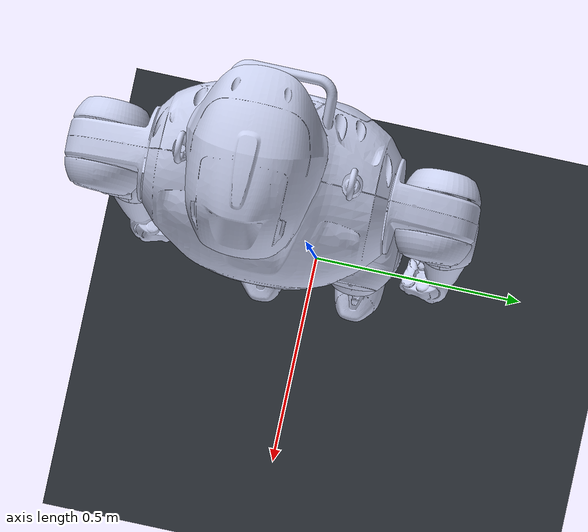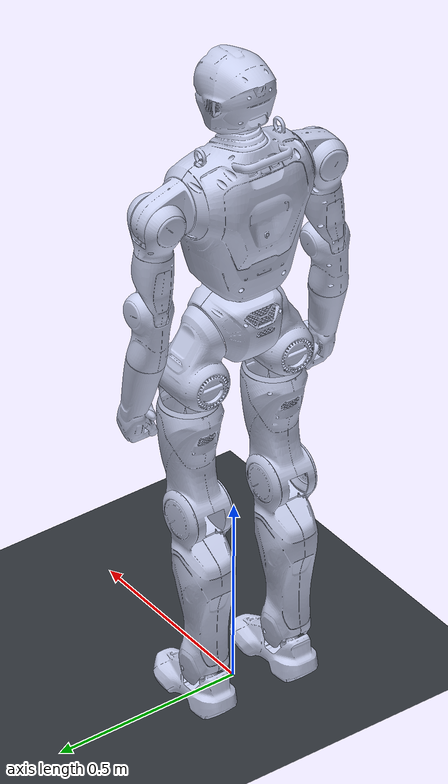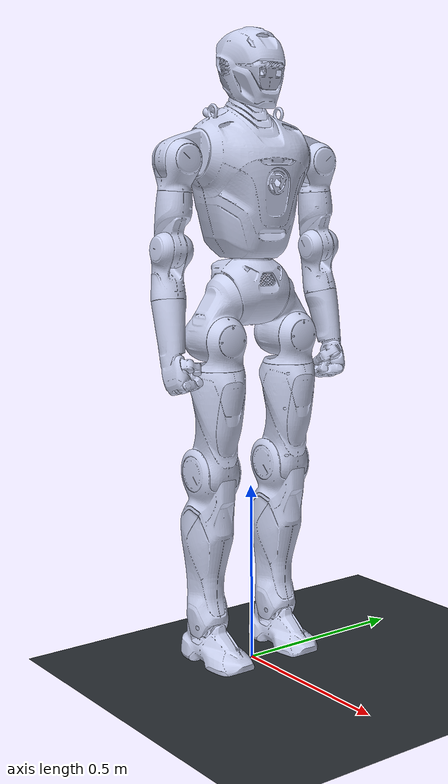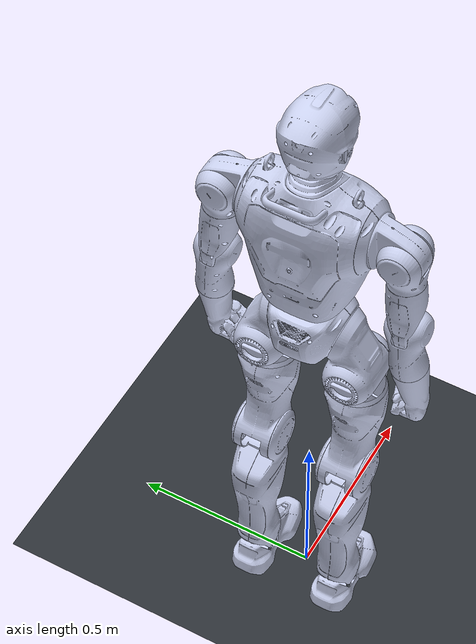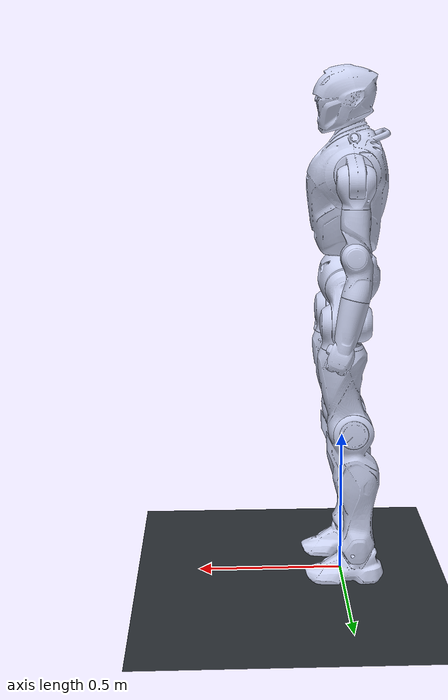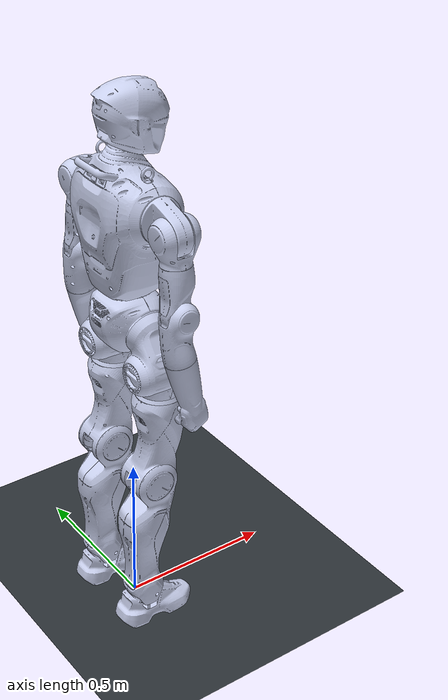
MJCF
<mujoco model="engineai_robotics">
  <compiler angle="radian" />
  <option tolerance="1e-10" />
  <default>
    <default class="biped">
      <default class="collision">
        <geom group="3" rgba="0.804 0.361 0.031 0.5" />
        <default class="collision_head">
          <geom size="0.09 0 0" />
          </default>
        <default class="collision_torso_upper_box">
          <geom size="0.11 0.14 0.095" type="box" />
          </default>
        <default class="collision_torso_lower_box">
          <geom size="0.09 0.1 0.07" type="box" />
          </default>
        <default class="collision_base">
          <geom size="0.09 0 0" />
          </default>
        <default class="collision_left_fore_foot">
          <geom size="0.057 0.055 0.01" type="box" />
          </default>
        <default class="collision_left_hind_foot">
          <geom size="0.03 0.05 0.01" type="box" />
          </default>
        <default class="collision_left_foot_toe">
          <geom size="0.013 0.06 0.01" type="box" />
          </default>
        <default class="collision_left_foot_heel">
          <geom size="0.018 0.05 0.01" type="box" />
          </default>
        <default class="collision_right_fore_foot">
          <geom size="0.057 0.055 0.01" type="box" />
          </default>
        <default class="collision_right_hind_foot">
          <geom size="0.03 0.05 0.01" type="box" />
          </default>
        <default class="collision_right_foot_toe">
          <geom size="0.013 0.06 0.01" type="box" />
          </default>
        <default class="collision_right_foot_heel">
          <geom size="0.018 0.05 0.01" type="box" />
          </default>
        <default class="collision_left_wrist_end">
          <geom size="0.05 0 0" />
          </default>
        <default class="collision_shoulder_yaw_left">
          <geom size="0.042 0.06 0" type="cylinder" />
          </default>
        <default class="collision_elbow_pitch_left">
          <geom size="0.05 0 0" />
          </default>
        <default class="collision_elbow_yaw_left">
          <geom size="0.035 0.035 0.08" type="box" />
          </default>
        <default class="collision_shoulder_yaw_right">
          <geom size="0.042 0.06 0" type="cylinder" />
          </default>
        <default class="collision_elbow_pitch_right">
          <geom size="0.05 0 0" />
          </default>
        <default class="collision_elbow_yaw_right">
          <geom size="0.035 0.035 0.08" type="box" />
          </default>
        <default class="collision_right_wrist_end">
          <geom size="0.05 0 0" />
          </default>
        <default class="collision_hip_left">
          <geom size="0.062 0.08 0" type="cylinder" />
          </default>
        <default class="collision_hip_yaw_left">
          <geom size="0.06 0.06 0.11" type="box" />
          </default>
        <default class="collision_hip_right">
          <geom size="0.062 0.08 0" type="cylinder" />
          </default>
        <default class="collision_hip_yaw_right">
          <geom size="0.06 0.06 0.11" type="box" />
          </default>
        <default class="collision_knee_left_1">
          <geom size="0.08 0 0" />
          </default>
        <default class="collision_knee_left_2">
          <geom size="0.05 0.05 0.14" type="box" />
          </default>
        <default class="collision_knee_right_1">
          <geom size="0.08 0 0" />
          </default>
        <default class="collision_knee_right_2">
          <geom size="0.05 0.05 0.14" type="box" />
          </default>
        <default class="collision_shoulder_roll_left">
          <geom size="0.042 0.06 0" type="cylinder" />
          </default>
        <default class="collision_shoulder_roll_right">
          <geom size="0.042 0.06 0" type="cylinder" />
          </default>
        </default>
      <default class="visual">
        <geom contype="0" conaffinity="0" group="2" />
        </default>
      <default class="joint">
        <joint damping="0.6" frictionloss="0.8" />
        </default>
      </default>
    </default>
  <asset>
    <texture name="t800_skybox" type="skybox" builtin="gradient" rgb1="0.35 0.45 0.60" rgb2="0.02 0.03 0.05" width="512" height="512" />
    <texture name="t800_groundplane" type="2d" builtin="checker" rgb1="0.22 0.24 0.26" rgb2="0.12 0.14 0.16" mark="edge" markrgb="0.8 0.8 0.8" width="512" height="512" />
    <material name="t800_groundplane" texture="t800_groundplane" texuniform="true" texrepeat="6 6" reflectance="0.18" />
    <texture type="2d" name="LINK_BASE" file="../texture/LINK_BASE.png" />
    <texture type="2d" name="LINK_HIP_PITCH" file="../texture/LINK_HIP_PITCH_L.png" />
    <texture type="2d" name="LINK_HIP_ROLL" file="../texture/LINK_HIP_ROLL_L.png" />
    <texture type="2d" name="LINK_HIP_YAW" file="../texture/LINK_HIP_YAW_L.png" />
    <texture type="2d" name="LINK_KNEE_PITCH" file="../texture/LINK_KNEE_PITCH_L.png" />
    <texture type="2d" name="LINK_ANKLE_ROLL" file="../texture/LINK_ANKLE_ROLL_L.png" />
    <texture type="2d" name="LINK_TORSO_YAW" file="../texture/LINK_TORSO_YAW.png" />
    <texture type="2d" name="LINK_SHOULDER_PITCH" file="../texture/LINK_SHOULDER_PITCH_L.png" />
    <texture type="2d" name="LINK_SHOULDER_ROLL" file="../texture/LINK_SHOULDER_ROLL_L.png" />
    <texture type="2d" name="LINK_SHOULDER_YAW" file="../texture/LINK_SHOULDER_YAW_L.png" />
    <texture type="2d" name="LINK_ELBOW_PITCH_L" file="../texture/LINK_ELBOW_PITCH_L.png" />
    <texture type="2d" name="LINK_ELBOW_PITCH_R" file="../texture/LINK_ELBOW_PITCH_R.png" />
    <texture type="2d" name="LINK_ELBOW_YAW_L" file="../texture/LINK_ELBOW_YAW_L.png" />
    <texture type="2d" name="LINK_ELBOW_YAW_R" file="../texture/LINK_ELBOW_YAW_R.png" />
    <texture type="2d" name="LINK_HEAD_YAW" file="../texture/LINK_HEAD_YAW.png" />
    <material name="LINK_BASE" texture="LINK_BASE" />
    <material name="LINK_HIP_PITCH" texture="LINK_HIP_PITCH" />
    <material name="LINK_HIP_ROLL" texture="LINK_HIP_ROLL" />
    <material name="LINK_HIP_YAW" texture="LINK_HIP_YAW" />
    <material name="LINK_KNEE_PITCH" texture="LINK_KNEE_PITCH" />
    <material name="LINK_ANKLE_ROLL" texture="LINK_ANKLE_ROLL" />
    <material name="LINK_TORSO_YAW" texture="LINK_TORSO_YAW" />
    <material name="LINK_SHOULDER_PITCH" texture="LINK_SHOULDER_PITCH" />
    <material name="LINK_SHOULDER_ROLL" texture="LINK_SHOULDER_ROLL" />
    <material name="LINK_SHOULDER_YAW" texture="LINK_SHOULDER_YAW" />
    <material name="LINK_ELBOW_PITCH_L" texture="LINK_ELBOW_PITCH_L" />
    <material name="LINK_ELBOW_PITCH_R" texture="LINK_ELBOW_PITCH_R" />
    <material name="LINK_ELBOW_YAW_L" texture="LINK_ELBOW_YAW_L" />
    <material name="LINK_ELBOW_YAW_R" texture="LINK_ELBOW_YAW_R" />
    <material name="LINK_HEAD_YAW" texture="LINK_HEAD_YAW" />
    <mesh name="LINK_BASE" file="../meshes/LINK_BASE.obj" />
    <mesh name="LINK_HIP_PITCH_L" file="../meshes/LINK_HIP_PITCH_L.obj" />
    <mesh name="LINK_HIP_ROLL_L" file="../meshes/LINK_HIP_ROLL_L.obj" />
    <mesh name="LINK_HIP_YAW_L" file="../meshes/LINK_HIP_YAW_L.obj" />
    <mesh name="LINK_KNEE_PITCH_L" file="../meshes/LINK_KNEE_PITCH_L.obj" />
    <mesh name="LINK_ANKLE_PITCH_L" file="../meshes/LINK_ANKLE_PITCH_L.obj" />
    <mesh name="LINK_ANKLE_ROLL_L" file="../meshes/LINK_ANKLE_ROLL_L.obj" />
    <mesh name="LINK_HIP_PITCH_R" file="../meshes/LINK_HIP_PITCH_R.obj" />
    <mesh name="LINK_HIP_ROLL_R" file="../meshes/LINK_HIP_ROLL_R.obj" />
    <mesh name="LINK_HIP_YAW_R" file="../meshes/LINK_HIP_YAW_R.obj" />
    <mesh name="LINK_KNEE_PITCH_R" file="../meshes/LINK_KNEE_PITCH_R.obj" />
    <mesh name="LINK_ANKLE_PITCH_R" file="../meshes/LINK_ANKLE_PITCH_R.obj" />
    <mesh name="LINK_ANKLE_ROLL_R" file="../meshes/LINK_ANKLE_ROLL_R.obj" />
    <mesh name="LINK_WAIST_YAW" file="../meshes/LINK_TORSO_YAW.obj" />
    <mesh name="LINK_SHOULDER_PITCH_L" file="../meshes/LINK_SHOULDER_PITCH_L.obj" />
    <mesh name="LINK_SHOULDER_ROLL_L" file="../meshes/LINK_SHOULDER_ROLL_L.obj" />
    <mesh name="LINK_SHOULDER_YAW_L" file="../meshes/LINK_SHOULDER_YAW_L.obj" />
    <mesh name="LINK_ELBOW_PITCH_L" file="../meshes/LINK_ELBOW_PITCH_L.obj" />
    <mesh name="LINK_ELBOW_YAW_L" file="../meshes/LINK_ELBOW_YAW_L.obj" />
    <mesh name="LINK_SHOULDER_PITCH_R" file="../meshes/LINK_SHOULDER_PITCH_R.obj" />
    <mesh name="LINK_SHOULDER_ROLL_R" file="../meshes/LINK_SHOULDER_ROLL_R.obj" />
    <mesh name="LINK_SHOULDER_YAW_R" file="../meshes/LINK_SHOULDER_YAW_R.obj" />
    <mesh name="LINK_ELBOW_PITCH_R" file="../meshes/LINK_ELBOW_PITCH_R.obj" />
    <mesh name="LINK_ELBOW_YAW_R" file="../meshes/LINK_ELBOW_YAW_R.obj" />
    <mesh name="LINK_HEAD_PITCH" file="../meshes/LINK_HEAD_PITCH.obj" />
    <mesh name="LINK_HEAD_YAW" file="../meshes/LINK_HEAD_YAW.obj" />
    </asset>
  <worldbody>
    <geom name="t800_floor" type="plane" pos="0 0 0.010924" size="0 0 0.01" material="t800_groundplane" contype="1" conaffinity="0" condim="3" friction="1 0.005 0.0001" />
    <light name="t800_key_light" pos="0 -2 3" dir="0 1 -1.5" diffuse="0.8 0.8 0.8" specular="0.25 0.25 0.25" />
    <light name="t800_fill_light" pos="1.5 1.5 2" dir="-1 -1 -1" diffuse="0.35 0.35 0.35" specular="0.05 0.05 0.05" />
    <light name="spotlight" target="LINK_BASE" pos="0 -1 2" dir="0 0 -1" mode="targetbodycom" />
    <body name="LINK_BASE" pos="0 0 1.03">
      <inertial pos="0.0148721 -0.00011942 0.167324" quat="0.999625 -0.0228524 0.0149724 -0.00187301" mass="10.0831" diaginertia="0.0506204 0.0339056 0.0328288" />
      <joint type="free" limited="false" actuatorfrclimited="false" />
      <geom class="visual" type="mesh" material="LINK_BASE" rgba="0.79216 0.81961 0.93333 1" mesh="LINK_BASE" />
      <geom class="collision_base" pos="-0.01 0 0.01" />
      <site name="base" pos="0.017949 -6.844e-05 0.21642" />
      <site name="imu" pos="0.0219 0 0.1252" />
      <body name="LINK_HIP_PITCH_L" pos="0 0.079178 0">
        <inertial pos="0.0061914 0.039194 -0.0989976" quat="0.703048 -0.000940502 -0.0835001 0.706222" mass="3.53619" diaginertia="0.00795732 0.00716152 0.00476425" />
        <joint name="J00_HIP_PITCH_L" pos="0 0 0" axis="0 0.965926 -0.258819" range="-3.316 2.269" actuatorfrcrange="-415 415" armature="0.242726" />
        <geom class="visual" type="mesh" material="LINK_HIP_PITCH" rgba="0.792157 0.819608 0.933333 1" mesh="LINK_HIP_PITCH_L" />
        <geom class="collision_hip_left" pos="0 0.04 -0.1" quat="0.707107 0 0.707107 0" />
        <body name="LINK_HIP_ROLL_L" pos="0.004662 0.040322 -0.10752">
          <inertial pos="0.0375309 4.95e-06 -0.0348455" quat="0.954117 -3.76557e-05 0.299433 -0.000109257" mass="0.851442" diaginertia="0.00291994 0.00257237 0.0014565" />
          <joint name="J01_HIP_ROLL_L" pos="0 0 0" axis="1 0 0" range="-1.082 2.059" actuatorfrcrange="-370 370" armature="0.141108" />
          <geom class="visual" type="mesh" material="LINK_HIP_ROLL" rgba="0.792157 0.819608 0.933333 1" mesh="LINK_HIP_ROLL_L" />
          <body name="LINK_HIP_YAW_L" pos="0.0094616 0 -0.080512">
            <inertial pos="-0.0182984 0.00236123 -0.176347" quat="0.709176 0.0588188 0.0462079 0.701053" mass="7.19482" diaginertia="0.115656 0.11402 0.0107766" />
            <joint name="J02_HIP_YAW_L" pos="0 0 0" axis="0 0 1" range="-1.42245 3.60228" actuatorfrcrange="-222 222" armature="0.0448737" />
            <geom class="visual" type="mesh" material="LINK_HIP_YAW" rgba="0.792157 0.819608 0.933333 1" mesh="LINK_HIP_YAW_L" />
            <geom class="collision_hip_yaw_left" pos="0 0.002 -0.1" />
            <body name="LINK_KNEE_PITCH_L" pos="-0.037707 0 -0.28792">
              <inertial pos="-0.0197449 0.00139162 -0.211907" quat="0.475454 0.0210361 0.0168989 0.879327" mass="5.99503" diaginertia="0.0858454 0.0856511 0.0115715" />
              <joint name="J03_KNEE_PITCH_L" pos="0 0 0" axis="0 1 0" range="-0.261667 2.355" actuatorfrcrange="-415 415" armature="0.242726" />
              <geom class="visual" type="mesh" material="LINK_KNEE_PITCH" rgba="0.792157 0.819608 0.933333 1" mesh="LINK_KNEE_PITCH_L" />
              <geom class="collision_knee_left_1" />
              <geom class="collision_knee_left_2" pos="-0.02 0 -0.25" />
              <body name="LINK_ANKLE_PITCH_L" pos="-0.0027168 0 -0.43867">
                <inertial pos="-3.678e-05 0 -0.00887033" quat="0.707027 -0.0106245 -0.0106245 0.707027" mass="0.144221" diaginertia="8.493e-05 6.78768e-05 3.82432e-05" />
                <joint name="J04_ANKLE_PITCH_L" pos="0 0 0" axis="0 1 0" range="-0.68068 0.68068" actuatorfrcrange="-160 160" armature="0.0354625" />
                <geom class="visual" type="mesh" rgba="0.796078 0.823529 0.937255 1" mesh="LINK_ANKLE_PITCH_L" />
                <body name="LINK_ANKLE_ROLL_L" pos="0.0011073 0 -0.037928">
                  <inertial pos="-0.00128738 -0.00120638 -0.0229558" quat="0.462135 0.542362 0.559636 0.423182" mass="1.49439" diaginertia="0.00707073 0.0069149 0.00202774" />
                  <joint name="J05_ANKLE_ROLL_L" pos="0 0 0" axis="1 0 0" range="-0.3491 0.1745" actuatorfrcrange="-160 160" armature="0.0354625" />
                  <geom class="visual" type="mesh" material="LINK_ANKLE_ROLL" rgba="0.792157 0.819608 0.933333 1" mesh="LINK_ANKLE_ROLL_L" />
                  <body name="LINK_FOOT_L">
                    <inertial pos="0 0 0" mass="0.001" diaginertia="1e-12 1e-12 1e-12" />
                    <geom class="collision_left_fore_foot" pos="0.1 0.00166 -0.054" />
                    <geom class="collision_left_hind_foot" pos="-0.053 0.00166 -0.054" />
                    <geom class="collision_left_foot_heel" pos="-0.092 0.00166 -0.045" quat="0.956383 0 0.292117 0" />
                    <site name="force_sensor_left_foot" pos="0 0 0" />
                    <site name="torque_sensor_left_foot" pos="0 0 0" />
                    </body>
                  </body>
                </body>
              </body>
            </body>
          </body>
        </body>
      <body name="LINK_HIP_PITCH_R" pos="0 -0.079178 0">
        <inertial pos="0.0061914 -0.039194 -0.0989976" quat="0.706222 -0.0835001 -0.000940502 0.703048" mass="3.53619" diaginertia="0.00795732 0.00716152 0.00476425" />
        <joint name="J06_HIP_PITCH_R" pos="0 0 0" axis="0 0.965926 0.258819" range="-3.316 2.269" actuatorfrcrange="-415 415" armature="0.242726" />
        <geom class="visual" type="mesh" material="LINK_HIP_PITCH" rgba="0.792157 0.819608 0.933333 1" mesh="LINK_HIP_PITCH_R" />
        <geom class="collision_hip_right" pos="0 -0.04 -0.1" quat="0.707107 0 0.707107 0" />
        <body name="LINK_HIP_ROLL_R" pos="0.004662 -0.040322 -0.10752">
          <inertial pos="0.0375309 -4.95e-06 -0.0348455" quat="0.954117 3.76557e-05 0.299433 0.000109257" mass="0.851442" diaginertia="0.00291994 0.00257237 0.0014565" />
          <joint name="J07_HIP_ROLL_R" pos="0 0 0" axis="1 0 0" range="-2.059 1.082" actuatorfrcrange="-370 370" armature="0.141108" />
          <geom class="visual" type="mesh" material="LINK_HIP_ROLL" rgba="0.792157 0.819608 0.933333 1" mesh="LINK_HIP_ROLL_R" />
          <body name="LINK_HIP_YAW_R" pos="0.0094616 0 -0.080512">
            <inertial pos="-0.0182984 -0.00236123 -0.176347" quat="0.701053 0.0462079 0.0588188 0.709176" mass="7.19482" diaginertia="0.115656 0.11402 0.0107766" />
            <joint name="J08_HIP_YAW_R" pos="0 0 0" axis="0 0 1" range="-3.60228 1.42245" actuatorfrcrange="-222 222" armature="0.0448737" />
            <geom class="visual" type="mesh" material="LINK_HIP_YAW" rgba="0.792157 0.819608 0.933333 1" mesh="LINK_HIP_YAW_R" />
            <geom class="collision_hip_yaw_right" pos="0 -0.002 -0.1" />
            <body name="LINK_KNEE_PITCH_R" pos="-0.037707 0 -0.28792">
              <inertial pos="-0.0197449 -0.00139162 -0.211907" quat="0.879327 0.0168989 0.0210361 0.475454" mass="5.99503" diaginertia="0.0858454 0.0856511 0.0115715" />
              <joint name="J09_KNEE_PITCH_R" pos="0 0 0" axis="0 1 0" range="-0.261667 2.355" actuatorfrcrange="-415 415" armature="0.242726" />
              <geom class="visual" type="mesh" material="LINK_KNEE_PITCH" rgba="0.792157 0.819608 0.933333 1" mesh="LINK_KNEE_PITCH_R" />
              <geom class="collision_knee_right_1" />
              <geom class="collision_knee_right_2" pos="-0.02 0 -0.25" />
              <body name="LINK_ANKLE_PITCH_R" pos="-0.0027168 0 -0.43867">
                <inertial pos="-3.678e-05 0 -0.00887033" quat="0.707027 -0.0106245 -0.0106245 0.707027" mass="0.144221" diaginertia="8.493e-05 6.78768e-05 3.82432e-05" />
                <joint name="J10_ANKLE_PITCH_R" pos="0 0 0" axis="0 1 0" range="-0.68068 0.68068" actuatorfrcrange="-160 160" armature="0.0354625" />
                <geom class="visual" type="mesh" rgba="0.792157 0.819608 0.933333 1" mesh="LINK_ANKLE_PITCH_R" />
                <body name="LINK_ANKLE_ROLL_R" pos="0.0011073 0 -0.037928">
                  <inertial pos="-0.00128738 0.00120638 -0.0229558" quat="0.423182 0.559636 0.542362 0.462135" mass="1.49439" diaginertia="0.00707073 0.0069149 0.00202774" />
                  <joint name="J11_ANKLE_ROLL_R" pos="0 0 0" axis="1 0 0" range="-0.1745 0.3491" actuatorfrcrange="-160 160" armature="0.0354625" />
                  <geom class="visual" type="mesh" material="LINK_ANKLE_ROLL" rgba="0.792157 0.819608 0.933333 1" mesh="LINK_ANKLE_ROLL_R" />
                  <body name="LINK_FOOT_R">
                    <inertial pos="0 0 0" mass="0.001" diaginertia="1e-12 1e-12 1e-12" />
                    <geom class="collision_right_fore_foot" pos="0.1 -0.00166 -0.054" />
                    <geom class="collision_right_hind_foot" pos="-0.053 0.00166 -0.054" />
                    <geom class="collision_right_foot_heel" pos="-0.092 0.00166 -0.045" quat="0.956383 0 0.292117 0" />
                    <site name="force_sensor_right_foot" pos="0 0 0" />
                    <site name="torque_sensor_right_foot" pos="0 0 0" />
                    </body>
                  </body>
                </body>
              </body>
            </body>
          </body>
        </body>
      <body name="LINK_WAIST_YAW" pos="0 0 0.10384">
        <inertial pos="-0.00880845 -0.0006861 0.222762" quat="0.998368 -0.00027422 -0.0570422 -0.0028246" mass="19.4108" diaginertia="0.256742 0.207512 0.15304" />
        <joint name="J12_TORSO_YAW" pos="0 0 0" axis="0 0 1" range="-4.381 1.2392" actuatorfrcrange="-222 222" armature="0.0448737" />
        <geom class="visual" type="mesh" material="LINK_TORSO_YAW" rgba="0.792157 0.819608 0.933333 1" mesh="LINK_WAIST_YAW" />
        <geom class="collision_torso_lower_box" pos="-0.007 -0.001 0.075" />
        <geom class="collision_torso_upper_box" pos="-0.007 -0.001 0.25" />
        <body name="LINK_SHOULDER_PITCH_L" pos="-0.011 0.16303 0.27889">
          <inertial pos="-0.00615457 0.0528418 -0.0124871" quat="0.835175 0.547699 0.0286813 0.0410699" mass="1.76883" diaginertia="0.00240978 0.00213951 0.00130718" />
          <joint name="J13_SHOULDER_PITCH_L" pos="0 0 0" axis="0 0.996779 0.0801989" range="-2.967 2.793" actuatorfrcrange="-160 160" armature="0.0354625" />
          <geom class="visual" type="mesh" material="LINK_SHOULDER_PITCH" rgba="0.792157 0.819608 0.933333 1" mesh="LINK_SHOULDER_PITCH_L" />
          <body name="LINK_SHOULDER_ROLL_L" pos="0 0.062533 -0.015455">
            <inertial pos="-0.00557192 0.00446659 -0.0271293" quat="0.699304 -0.0958375 -0.196856 0.680468" mass="0.682893" diaginertia="0.00216819 0.00159945 0.0014132" />
            <joint name="J14_SHOULDER_ROLL_L" pos="0 0 0" axis="1 0 0" range="-0.384 2.443" actuatorfrcrange="-160 160" armature="0.0354625" />
            <geom class="visual" type="mesh" material="LINK_SHOULDER_ROLL" rgba="0.792157 0.819608 0.933333 1" mesh="LINK_SHOULDER_ROLL_L" />
            <geom class="collision_shoulder_roll_left" quat="0.707107 0 0.707107 0" />
            <body name="LINK_SHOULDER_YAW_L" pos="3.4602e-05 0.0085246 -0.082712">
              <inertial pos="0.00062214 0.00554981 -0.0898056" quat="0.706399 0.0160146 -0.024757 0.7072" mass="2.55202" diaginertia="0.00997961 0.00983419 0.00114425" />
              <joint name="J15_SHOULDER_YAW_L" pos="0 0 0" axis="0 -0.0714971 0.997441" range="-2.618 2.618" actuatorfrcrange="-160 160" armature="0.0354625" />
              <geom class="visual" type="mesh" material="LINK_SHOULDER_YAW" rgba="0.792157 0.819608 0.933333 1" mesh="LINK_SHOULDER_YAW_L" />
              <geom class="collision_shoulder_yaw_left" pos="0 0 -0.04" />
              <body name="LINK_ELBOW_PITCH_L" pos="0.0019252 0.013597 -0.15075">
                <inertial pos="-0.00883497 0.00295203 -0.0733334" quat="0.992911 0.0869004 0.0117583 0.0802349" mass="1.19527" diaginertia="0.00319667 0.00310646 0.00126793" />
                <joint name="J16_ELBOW_PITCH_L" pos="0 0 0" axis="0 0.997441 0.0714971" range="-2.286 0.262" actuatorfrcrange="-160 160" armature="0.0354625" />
                <geom class="visual" type="mesh" material="LINK_ELBOW_PITCH_L" rgba="0.792157 0.819608 0.933333 1" mesh="LINK_ELBOW_PITCH_L" />
                <geom class="collision_elbow_pitch_left" />
                <body name="LINK_ELBOW_YAW_L" pos="-0.0022091 0.0094362 -0.13182">
                  <inertial pos="0.0130094 0.00447975 -0.0584384" quat="0.702494 -0.0450935 -0.106593 0.702216" mass="1.07882" diaginertia="0.00215017 0.00201667 0.000854073" />
                  <joint name="J17_ELBOW_YAW_L" pos="0 0 0" axis="-0.216439 -0.0698028 0.973798" range="-2.618 2.618" actuatorfrcrange="-52 52" armature="0.00671625" />
                  <geom class="visual" type="mesh" material="LINK_ELBOW_YAW_L" rgba="0.792157 0.819608 0.933333 1" mesh="LINK_ELBOW_YAW_L" />
                  <geom class="collision_elbow_yaw_left" pos="0.014 0.005 -0.05" quat="0.987638 0.010996 -0.0869681 0.129952" />
                  <body name="LINK_WRIST_END_L" pos="0.029436 0.0124855 -0.132222">
                    <inertial pos="0 0 0" mass="0.001" diaginertia="1e-12 1e-12 1e-12" />
                    <geom class="collision_left_wrist_end" pos="0.026 -0.009 -0.06" />
                    </body>
                  </body>
                </body>
              </body>
            </body>
          </body>
        <body name="LINK_SHOULDER_PITCH_R" pos="-0.011 -0.16303 0.27889">
          <inertial pos="-0.00615457 -0.0528418 -0.0124871" quat="0.547699 0.835175 -0.0410699 -0.0286813" mass="1.76883" diaginertia="0.00240978 0.00213951 0.00130718" />
          <joint name="J18_SHOULDER_PITCH_R" pos="0 0 0" axis="0 0.996779 -0.0801989" range="-2.967 2.793" actuatorfrcrange="-160 160" armature="0.0354625" />
          <geom class="visual" type="mesh" material="LINK_SHOULDER_PITCH" rgba="0.792157 0.819608 0.933333 1" mesh="LINK_SHOULDER_PITCH_R" />
          <body name="LINK_SHOULDER_ROLL_R" pos="0 -0.062533 -0.015455">
            <inertial pos="-0.00557192 -0.00446659 -0.0271293" quat="0.680468 -0.196856 -0.0958375 0.699304" mass="0.682893" diaginertia="0.00216819 0.00159945 0.0014132" />
            <joint name="J19_SHOULDER_ROLL_R" pos="0 0 0" axis="1 0 0" range="-2.443 0.384" actuatorfrcrange="-160 160" armature="0.0354625" />
            <geom class="visual" type="mesh" material="LINK_SHOULDER_ROLL" rgba="0.792157 0.819608 0.933333 1" mesh="LINK_SHOULDER_ROLL_R" />
            <geom class="collision_shoulder_roll_right" quat="0.707107 0 0.707107 0" />
            <body name="LINK_SHOULDER_YAW_R" pos="3.4602e-05 -0.0085246 -0.082712">
              <inertial pos="0.00062214 -0.00554981 -0.0898056" quat="0.7072 -0.024757 0.0160146 0.706399" mass="2.55202" diaginertia="0.00997961 0.00983419 0.00114425" />
              <joint name="J20_SHOULDER_YAW_R" pos="0 0 0" axis="0 0.0714971 0.997441" range="-2.618 2.618" actuatorfrcrange="-160 160" armature="0.0354625" />
              <geom class="visual" type="mesh" material="LINK_SHOULDER_YAW" rgba="0.792157 0.819608 0.933333 1" mesh="LINK_SHOULDER_YAW_R" />
              <geom class="collision_shoulder_yaw_right" pos="0 0 -0.04" />
              <body name="LINK_ELBOW_PITCH_R" pos="0.0019252 -0.013597 -0.15075">
                <inertial pos="-0.00883497 -0.00295203 -0.0733334" quat="0.992911 -0.0869004 0.0117583 -0.0802349" mass="1.19527" diaginertia="0.00319667 0.00310646 0.00126793" />
                <joint name="J21_ELBOW_PITCH_R" pos="0 0 0" axis="0 0.997441 -0.0714971" range="-2.286 0.262" actuatorfrcrange="-160 160" armature="0.0354625" />
                <geom class="visual" type="mesh" material="LINK_ELBOW_PITCH_R" rgba="0.792157 0.819608 0.933333 1" mesh="LINK_ELBOW_PITCH_R" />
                <geom class="collision_elbow_pitch_right" />
                <body name="LINK_ELBOW_YAW_R" pos="-0.0022091 -0.0094362 -0.13182">
                  <inertial pos="0.0130094 -0.00447975 -0.0584384" quat="0.702216 -0.106593 -0.0450935 0.702494" mass="1.07882" diaginertia="0.00215017 0.00201667 0.000854073" />
                  <joint name="J22_ELBOW_YAW_R" pos="0 0 0" axis="-0.216439 0.0698028 0.973798" range="-2.618 2.618" actuatorfrcrange="-52 52" armature="0.00671625" />
                  <geom class="visual" type="mesh" material="LINK_ELBOW_YAW_R" rgba="0.792157 0.819608 0.933333 1" mesh="LINK_ELBOW_YAW_R" />
                  <geom class="collision_elbow_yaw_right" pos="0.014 -0.005 -0.05" quat="0.987638 -0.010996 -0.0869681 -0.129952" />
                  <body name="LINK_WRIST_END_R" pos="0.029436 -0.0124855 -0.132222">
                    <inertial pos="0 0 0" mass="0.001" diaginertia="1e-12 1e-12 1e-12" />
                    <geom class="collision_right_wrist_end" pos="0.026 0.009 -0.06" />
                    </body>
                  </body>
                </body>
              </body>
            </body>
          </body>
        <body name="LINK_HEAD_PITCH" pos="-0.0113 0 0.38604">
          <inertial pos="0.00012689 0.00010014 0.0672953" quat="0.999045 -0.0436093 0.00159275 0.00209103" mass="0.707966" diaginertia="0.000660474 0.000564278 0.000455089" />
          <joint name="J23_HEAD_PITCH" pos="0 0 0" axis="0 1 0" range="-0.523 0.523" actuatorfrcrange="-52 52" armature="0.00671625" />
          <geom class="visual" type="mesh" rgba="0.792157 0.819608 0.933333 1" mesh="LINK_HEAD_PITCH" />
          <body name="LINK_HEAD_YAW" pos="0 0 0.040199">
            <inertial pos="0.0181326 4.92e-06 0.0928944" quat="0.338158 0.621066 0.621323 0.337468" mass="1.72377" diaginertia="0.00848513 0.00826129 0.0065396" />
            <joint name="J24_HEAD_YAW" pos="0 0 0" axis="0 0 1" range="-1.222 1.222" actuatorfrcrange="-52 52" armature="0.00671625" />
            <geom class="visual" type="mesh" material="LINK_HEAD_YAW" rgba="0.792157 0.819608 0.933333 1" mesh="LINK_HEAD_YAW" />
            <geom class="collision_head" pos="0.018 0 0.08" />
            </body>
          </body>
        </body>
      </body>
    </worldbody>
  <actuator>
    <general name="motor_J00_HIP_PITCH_L" joint="J00_HIP_PITCH_L" ctrllimited="true" ctrlrange="-415 415" />
    <general name="motor_J01_HIP_ROLL_L" joint="J01_HIP_ROLL_L" ctrllimited="true" ctrlrange="-370 370" />
    <general name="motor_J02_HIP_YAW_L" joint="J02_HIP_YAW_L" ctrllimited="true" ctrlrange="-222 222" />
    <general name="motor_J03_KNEE_PITCH_L" joint="J03_KNEE_PITCH_L" ctrllimited="true" ctrlrange="-415 415" />
    <general name="motor_J04_ANKLE_PITCH_L" joint="J04_ANKLE_PITCH_L" ctrllimited="true" ctrlrange="-160 160" />
    <general name="motor_J05_ANKLE_ROLL_L" joint="J05_ANKLE_ROLL_L" ctrllimited="true" ctrlrange="-160 160" />
    <general name="motor_J06_HIP_PITCH_R" joint="J06_HIP_PITCH_R" ctrllimited="true" ctrlrange="-415 415" />
    <general name="motor_J07_HIP_ROLL_R" joint="J07_HIP_ROLL_R" ctrllimited="true" ctrlrange="-370 370" />
    <general name="motor_J08_HIP_YAW_R" joint="J08_HIP_YAW_R" ctrllimited="true" ctrlrange="-222 222" />
    <general name="motor_J09_KNEE_PITCH_R" joint="J09_KNEE_PITCH_R" ctrllimited="true" ctrlrange="-415 415" />
    <general name="motor_J10_ANKLE_PITCH_R" joint="J10_ANKLE_PITCH_R" ctrllimited="true" ctrlrange="-160 160" />
    <general name="motor_J11_ANKLE_ROLL_R" joint="J11_ANKLE_ROLL_R" ctrllimited="true" ctrlrange="-160 160" />
    <general name="motor_J12_TORSO_YAW" joint="J12_TORSO_YAW" ctrllimited="true" ctrlrange="-222 222" />
    <general name="motor_J13_SHOULDER_PITCH_L" joint="J13_SHOULDER_PITCH_L" ctrllimited="true" ctrlrange="-160 160" />
    <general name="motor_J14_SHOULDER_ROLL_L" joint="J14_SHOULDER_ROLL_L" ctrllimited="true" ctrlrange="-160 160" />
    <general name="motor_J15_SHOULDER_YAW_L" joint="J15_SHOULDER_YAW_L" ctrllimited="true" ctrlrange="-160 160" />
    <general name="motor_J16_ELBOW_PITCH_L" joint="J16_ELBOW_PITCH_L" ctrllimited="true" ctrlrange="-160 160" />
    <general name="motor_J17_ELBOW_YAW_L" joint="J17_ELBOW_YAW_L" ctrllimited="true" ctrlrange="-52 52" />
    <general name="motor_J18_SHOULDER_PITCH_R" joint="J18_SHOULDER_PITCH_R" ctrllimited="true" ctrlrange="-160 160" />
    <general name="motor_J19_SHOULDER_ROLL_R" joint="J19_SHOULDER_ROLL_R" ctrllimited="true" ctrlrange="-160 160" />
    <general name="motor_J20_SHOULDER_YAW_R" joint="J20_SHOULDER_YAW_R" ctrllimited="true" ctrlrange="-160 160" />
    <general name="motor_J21_ELBOW_PITCH_R" joint="J21_ELBOW_PITCH_R" ctrllimited="true" ctrlrange="-160 160" />
    <general name="motor_J22_ELBOW_YAW_R" joint="J22_ELBOW_YAW_R" ctrllimited="true" ctrlrange="-52 52" />
    <general name="motor_J23_HEAD_PITCH" joint="J23_HEAD_PITCH" ctrllimited="true" ctrlrange="-52 52" />
    <general name="motor_J24_HEAD_YAW" joint="J24_HEAD_YAW" ctrllimited="true" ctrlrange="-52 52" />
    </actuator>
  <sensor>
    <framequat objtype="site" objname="base" name="base_link_quaternion" />
    <framepos objtype="site" objname="base" name="base_link_position" />
    <framelinvel objtype="site" objname="base" name="base_link_linear_velocity" />
    <frameangvel objtype="site" objname="base" name="base_link_angular_velocity" />
    <framequat objtype="site" objname="imu" name="imu_link_quaternion" />
    <framepos objtype="site" objname="imu" name="imu_link_position" />
    <framelinvel objtype="site" objname="imu" name="imu_link_linear_velocity" />
    <frameangvel objtype="site" objname="imu" name="imu_link_angular_velocity" />
    <framequat objtype="site" objname="imu" name="imu_quaternion" />
    <accelerometer site="imu" name="imu_linear_acceleration" />
    <gyro site="imu" name="imu_angular_velocity" />
    <force site="force_sensor_left_foot" name="force_left_foot" />
    <torque site="torque_sensor_left_foot" name="torque_left_foot" />
    <force site="force_sensor_right_foot" name="force_right_foot" />
    <torque site="torque_sensor_right_foot" name="torque_right_foot" />
    </sensor>
  </mujoco>
